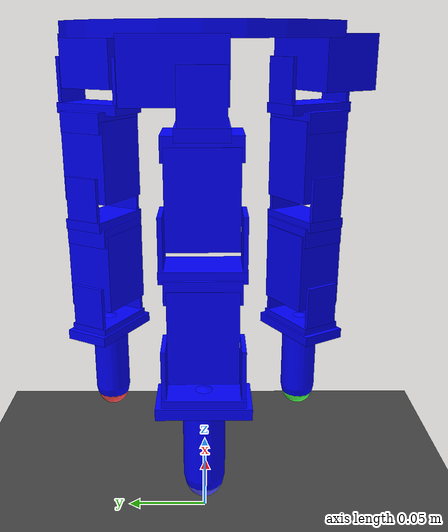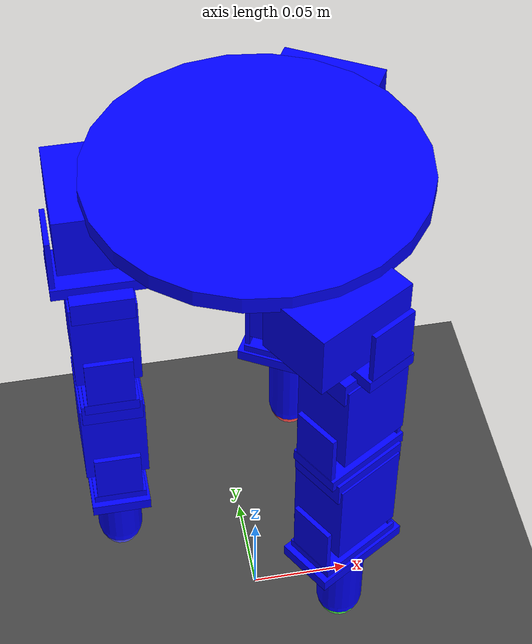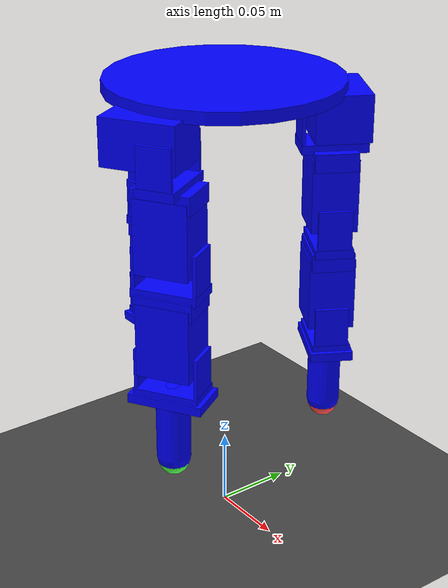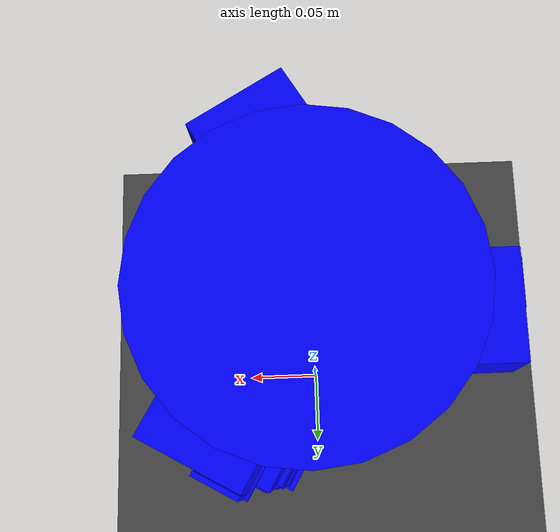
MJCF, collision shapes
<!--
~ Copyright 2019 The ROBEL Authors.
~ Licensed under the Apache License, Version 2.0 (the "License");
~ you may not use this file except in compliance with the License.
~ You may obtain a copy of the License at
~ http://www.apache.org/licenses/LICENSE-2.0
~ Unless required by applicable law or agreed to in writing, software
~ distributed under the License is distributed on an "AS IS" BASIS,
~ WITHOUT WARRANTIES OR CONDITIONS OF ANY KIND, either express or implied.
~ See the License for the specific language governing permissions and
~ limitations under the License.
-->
<mujoco model="dclaw scene">

    <include file="dclaw.xml"/>

    <visual>
        <headlight diffuse="0.6 0.6 0.6" ambient="0.3 0.3 0.3" specular="0 0 0"/>
        <rgba haze="0.15 0.25 0.35 1"/>
        <global azimuth="120" elevation="-20"/>
    </visual>

    <asset>
        <texture type="2d" name="groundplane" builtin="flat" rgb1="0.27 0.27 0.27"
                 width="300" height="300"/>
        <material name="groundplane" texture="groundplane" reflectance="0.0"/>
    </asset>

    <worldbody>
        <camera name="closeup" pos="2.  0.  0.5" quat="0.5 0.5 0.5 0.5"/>

        <light pos="0 0 1.5" dir="0 0 -1" directional="true"/>
        <geom name="floor" size="0 0 0.05" type="plane" material="groundplane"/>

<!--                  friction="0.5 0.005 0.0001"-->

<!--            &lt;!&ndash; add colors to the cube's surfaces &ndash;&gt;-->

<!--            &lt;!&ndash; add coordinate system &ndash;&gt;-->

    </worldbody>
</mujoco>

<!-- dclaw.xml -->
<mujoco model="dclaw">
    <compiler angle="radian" meshdir="assets"/>

    <option timestep="0.0025" iterations="50" tolerance="1e-10" solver="Newton" jacobian="dense" cone="elliptic"/>

    <asset>
        <mesh name="xh28" file="xh_base_high_poly.stl" scale=".001 .001 .001"/>
        <mesh name="plastic_finger" file="xh_finger_tip.stl" scale=".001 .001 .001"/>
        <mesh name="metal_clamping" file="xh_clamping_high_poly.stl" scale=".001 .001 .001"/>
        <mesh name="metal_clamping_small" file="xh_clamping_small_high_poly.stl" scale=".001 .001 .001"/>
        <mesh name="plastic_top" file="xh_white_top_high_poly.stl" scale=".001 .001 .001"/>
        <mesh name="xh28_hull" file="xh_base_hull.stl" scale=".001 .001 .001"/>
        <mesh name="xh28_hull_top" file="xh_base_hull_top.stl" scale=".001 .001 .001"/>
    </asset>
    <default>
        <default class="dclaw3xh">
            <joint limited="true" damping=".1" armature="0.001"/>
            <geom contype="0" conaffinity="0" condim="4" group="1" margin="0.0005" material="metal_black" type="mesh"/>
            <motor ctrlrange="-1.57 1.57" ctrllimited="true"/>
            <site group="1"/>
            <default class="overlay">
                <geom contype="0" conaffinity="0" group="3" type="mesh" material="greenish"/>
                <joint damping="100" frictionloss="100" armature="0"/>
                <site group="3"/>
            </default>
            <default class="phy_metal">
                <geom contype="1" conaffinity="1" group="4" type="mesh" rgba="0.0 0.0 1.0 .3"/>
                <site group="4"/>
            </default>
            <default class="phy_plastic">
                <geom contype="1" conaffinity="1" group="4" type="mesh" rgba="0.0 0.0 1.0 .3"
                      friction=".2 0.005 0.0001"/>
                <site group="4"/>
            </default>
        </default>
    </default>
    <asset>
        <material name="metal_black" specular="0" shininess="0" rgba="0.2 0.2 0.2 1.0"/>
        <material name="metal_grey" specular="0" shininess="0" rgba="0.5 0.5 0.5 1.0"/>
        <material name="plastic" specular="0." shininess="0" rgba="1 1 1 1"/>
        <material name="acrylic" specular="0." shininess="0" rgba="1 1 1 .2"/>
        <material name="greenish" specular="0.0" shininess="0" rgba="0.3 1 0.3 1"/>
    </asset>
    <actuator>
        <position name="FF10" kp="20" joint="FF10" class="dclaw3xh" ctrlrange="-1.35 1.35"/>
        <position name="FF11" kp="20" joint="FF11" class="dclaw3xh" ctrlrange="-1.35 1.35"/>
        <position name="FF12" kp="20" joint="FF12" class="dclaw3xh" ctrlrange="-1.35 1.35"/>
        <position name="MF20" kp="20" joint="MF20" class="dclaw3xh" ctrlrange="-1.35 1.35"/>
        <position name="MF21" kp="20" joint="MF21" class="dclaw3xh" ctrlrange="-1.35 1.35"/>
        <position name="MF22" kp="20" joint="MF22" class="dclaw3xh" ctrlrange="-1.35 1.35"/>
        <position name="TH30" kp="20" joint="TH30" class="dclaw3xh" ctrlrange="-1.35 1.35"/>
        <position name="TH31" kp="20" joint="TH31" class="dclaw3xh" ctrlrange="-1.35 1.35"/>
        <position name="TH32" kp="20" joint="TH32" class="dclaw3xh" ctrlrange="-1.35 1.35"/>
    </actuator>
    <sensor>
        <jointpos name="FF10_pos_sensor" joint="FF10"/>
        <jointpos name="FF11_pos_sensor" joint="FF11"/>
        <jointpos name="FF12_pos_sensor" joint="FF12"/>
        <jointpos name="MF20_pos_sensor" joint="MF20"/>
        <jointpos name="MF21_pos_sensor" joint="MF21"/>
        <jointpos name="MF22_pos_sensor" joint="MF22"/>
        <jointpos name="TH30_pos_sensor" joint="TH30"/>
        <jointpos name="TH31_pos_sensor" joint="TH31"/>
        <jointpos name="TH32_pos_sensor" joint="TH32"/>
        <jointvel name="FF10_velocity_sensor" joint="FF10"/>
        <jointvel name="FF11_velocity_sensor" joint="FF11"/>
        <jointvel name="FF12_velocity_sensor" joint="FF12"/>
        <jointvel name="MF20_velocity_sensor" joint="MF20"/>
        <jointvel name="MF21_velocity_sensor" joint="MF21"/>
        <jointvel name="MF22_velocity_sensor" joint="MF22"/>
        <jointvel name="TH30_velocity_sensor" joint="TH30"/>
        <jointvel name="TH31_velocity_sensor" joint="TH31"/>
        <jointvel name="TH32_velocity_sensor" joint="TH32"/>
    </sensor>

    <worldbody>
        <body name="dClaw" euler="3.14 0 0" childclass="dclaw3xh" pos="0 0 0.3">
            <geom class="phy_metal" type="cylinder" size="0.075 0.004" mass=".11"/>
            <site name="S_grasp" pos="0 0 0.24" type="sphere" size="0.01" group="4"/>
            <!-- INDEX/FIRST FINGER -->
            <body name="FFbase" pos=".03 -0.062 .003" euler="0 0 .52">
                <geom mesh="xh28" pos="0 0 0.01425" euler="1.57 0 1.57"/>
                <geom class="phy_metal" type="box" pos=".012 0 0.014" size="0.024 0.0175 0.015" mass=".093"/>
                <body name="FF10" pos="0 0 0.01425" euler="0 0 3.14">
                    <geom mesh="metal_clamping" euler="0 0 1.57"/>
                    <geom mesh="metal_clamping_small" pos="0 0 0.055" euler="3.14 0 0"/>
                    <geom mesh="xh28" pos="0 0 0.068" euler="1.57 1.57 0"/>
                    <geom class="phy_metal" type="box" pos="0 0 0.056" size="0.0175 0.015 0.024" mass=".093"/>
                    <geom class="phy_metal" type="box" pos="0.0 0 0.026" size="0.0125 0.0214 0.003" mass=".003"/>
                    <geom class="phy_metal" type="box" pos="0 0.02 0.013" size="0.011 0.0012 0.016" mass=".002"/>
                    <geom class="phy_metal" type="box" pos="0 -0.02 0.013" size="0.011 0.0012 0.016" mass=".002"/>
                    <geom class="phy_metal" type="box" pos="0 0 0.033" size="0.019 0.014 0.006" mass=".005"/>
                    <joint name="FF10" type="hinge" axis="0 1 0" range="-.45 1.35"/>
                    <body name="FF11" pos="0 0 0.0675">
                        <geom mesh="metal_clamping_small" pos="0 0 0.055" euler="3.14 0 0"/>
                        <geom mesh="xh28" pos="0 0 0.0686" euler="1.57 1.57 0"/>
                        <geom mesh="metal_clamping"/>
                        <geom class="phy_metal" type="box" pos="0 0 0.056" size="0.0175 0.015 0.024" mass=".093"/>
                        <geom class="phy_metal" type="box" pos="0 0 0.026" size="0.0214 0.0125 0.003" mass=".003"/>
                        <geom class="phy_metal" type="box" pos="0.02 0 0.013" size="0.0012 0.011 0.016" mass=".002"/>
                        <geom class="phy_metal" type="box" pos="-0.02 0 0.013" size="0.0012 0.011 0.016" mass=".002"/>
                        <geom class="phy_metal" type="box" pos="0 0 0.033" size="0.019 0.014 0.006" mass=".005"/>
                        <joint name="FF11" type="hinge" axis="1 0 0" range="-2 2"/>
                        <body name="FF12" pos="0 0 0.068">
                            <geom mesh="metal_clamping"/>
                            <geom material="plastic" mesh="plastic_finger" pos="0 0 0.046"/>
                            <geom class="phy_metal" type="box" pos="0.0 0 0.026" size="0.0214 0.0125 0.003"
                                  mass=".003"/>
                            <geom class="phy_metal" type="box" pos="0.02 0 0.013" size="0.0012 0.011 0.016"
                                  mass=".002"/>
                            <geom class="phy_metal" type="box" pos="-0.02 0 0.013" size="0.0012 0.011 0.016"
                                  mass=".002"/>
                            <geom class="phy_plastic" type="capsule" pos="0 0 0.053" size="0.011 0.02" mass=".018"/>
                            <geom class="phy_plastic" type="box" pos="0 0 0.03" size="0.0245 0.014 0.003" mass=".007"/>
                            <joint name="FF12" type="hinge" axis="1 0 0" range="-2 2"/>
                            <site name="FFtip" type="sphere" pos="0 0 .076" size="0.01" rgba="1 .3 .3 1"/>
                        </body>
                    </body>
                </body>
            </body>
            <!-- MIDDLE FINGER -->
            <body name="MFbase" pos=".03 0.062 .003" euler="0 0 2.6">
                <geom mesh="xh28" pos="0 0 0.01425" euler="1.57 0 1.57"/>
                <geom class="phy_metal" type="box" pos=".012 0 0.014" size="0.024 0.0175 0.015" mass=".093"/>
                <body name="MF20" pos="0 0 0.01425" euler="0 0 3.14">
                    <geom mesh="metal_clamping" euler="0 0 1.57"/>
                    <geom mesh="metal_clamping_small" pos="0 0 0.055" euler="3.14 0 0"/>
                    <geom mesh="xh28" pos="0 0 0.068" euler="1.57 1.57 0"/>
                    <geom class="phy_metal" type="box" pos="0 0 0.056" size="0.0175 0.015 0.024" mass=".093"/>
                    <geom class="phy_metal" type="box" pos="0.0 0 0.026" size="0.0125 0.0214 0.003" mass=".003"/>
                    <geom class="phy_metal" type="box" pos="0 0.02 0.013" size="0.011 0.0012 0.016" mass=".002"/>
                    <geom class="phy_metal" type="box" pos="0 -0.02 0.013" size="0.011 0.0012 0.016" mass=".002"/>
                    <geom class="phy_metal" type="box" pos="0 0 0.033" size="0.019 0.014 0.006" mass=".005"/>
                    <joint name="MF20" type="hinge" axis="0 1 0" range="-.45 1.35"/>
                    <body name="MF21" pos="0 0 0.0675">
                        <geom mesh="metal_clamping_small" pos="0 0 0.055" euler="3.14 0 0"/>
                        <geom mesh="xh28" pos="0 0 0.0686" euler="1.57 1.57 0"/>
                        <geom mesh="metal_clamping"/>
                        <geom class="phy_metal" type="box" pos="0 0 0.056" size="0.0175 0.015 0.024" mass=".093"/>
                        <geom class="phy_metal" type="box" pos="0 0 0.026" size="0.0214 0.0125 0.003" mass=".003"/>
                        <geom class="phy_metal" type="box" pos="0.02 0 0.013" size="0.0012 0.011 0.016" mass=".002"/>
                        <geom class="phy_metal" type="box" pos="-0.02 0 0.013" size="0.0012 0.011 0.016" mass=".002"/>
                        <geom class="phy_metal" type="box" pos="0 0 0.033" size="0.019 0.014 0.006" mass=".005"/>
                        <joint name="MF21" type="hinge" axis="1 0 0" range="-2 2"/>
                        <body name="MF22" pos="0 0 0.068">
                            <geom mesh="metal_clamping"/>
                            <geom material="plastic" mesh="plastic_finger" pos="0 0 0.046"/>
                            <geom class="phy_metal" type="box" pos="0.0 0 0.026" size="0.0214 0.0125 0.003"
                                  mass=".003"/>
                            <geom class="phy_metal" type="box" pos="0.02 0 0.013" size="0.0012 0.011 0.016"
                                  mass=".002"/>
                            <geom class="phy_metal" type="box" pos="-0.02 0 0.013" size="0.0012 0.011 0.016"
                                  mass=".002"/>
                            <geom class="phy_plastic" type="capsule" pos="0 0 0.053" size="0.011 0.02" mass=".018"/>
                            <geom class="phy_plastic" type="box" pos="0 0 0.03" size="0.0245 0.014 0.003" mass=".007"/>
                            <joint name="MF22" type="hinge" axis="1 0 0" range="-2 2"/>
                            <site name="MFtip" type="sphere" pos="0 0 .076" size="0.01" rgba=".3 1 .3 1"/>
                        </body>
                    </body>
                </body>
            </body>
            <!-- THUMB -->
            <body name="THbase" pos="-.07 0 .003" euler="0 0 -1.57">
                <geom mesh="xh28" pos="0 0 0.01425" euler="1.57 0 1.57"/>
                <geom class="phy_metal" type="box" pos=".012 0 0.014" size="0.024 0.0175 0.015" mass=".093"/>
                <body name="TH30" pos="0 0 0.01425" euler="0 0 3.14">
                    <geom mesh="metal_clamping" euler="0 0 1.57"/>
                    <geom mesh="metal_clamping_small" pos="0 0 0.055" euler="3.14 0 0"/>
                    <geom mesh="xh28" pos="0 0 0.068" euler="1.57 1.57 0"/>
                    <geom class="phy_metal" type="box" pos="0 0 0.056" size="0.0175 0.015 0.024" mass=".093"/>
                    <geom class="phy_metal" type="box" pos="0.0 0 0.026" size="0.0125 0.0214 0.003" mass=".003"/>
                    <geom class="phy_metal" type="box" pos="0 0.02 0.013" size="0.011 0.0012 0.016" mass=".002"/>
                    <geom class="phy_metal" type="box" pos="0 -0.02 0.013" size="0.011 0.0012 0.016" mass=".002"/>
                    <geom class="phy_metal" type="box" pos="0 0 0.033" size="0.019 0.014 0.006" mass=".005"/>
                    <joint name="TH30" type="hinge" axis="0 1 0" range="-.45 1.35"/>
                    <body name="TH31" pos="0 0 0.0675">
                        <geom mesh="metal_clamping_small" pos="0 0 0.055" euler="3.14 0 0"/>
                        <geom mesh="xh28" pos="0 0 0.0686" euler="1.57 1.57 0"/>
                        <geom mesh="metal_clamping"/>
                        <geom class="phy_metal" type="box" pos="0 0 0.056" size="0.0175 0.015 0.024" mass=".093"/>
                        <geom class="phy_metal" type="box" pos="0 0 0.026" size="0.0214 0.0125 0.003" mass=".003"/>
                        <geom class="phy_metal" type="box" pos="0.02 0 0.013" size="0.0012 0.011 0.016" mass=".002"/>
                        <geom class="phy_metal" type="box" pos="-0.02 0 0.013" size="0.0012 0.011 0.016" mass=".002"/>
                        <geom class="phy_metal" type="box" pos="0 0 0.033" size="0.019 0.014 0.006" mass=".005"/>
                        <joint name="TH31" type="hinge" axis="1 0 0" range="-2 2"/>
                        <body name="TH32" pos="0 0 0.068">
                            <geom mesh="metal_clamping"/>
                            <geom material="plastic" mesh="plastic_finger" pos="0 0 0.046"/>
                            <geom class="phy_metal" type="box" pos="0.0 0 0.026" size="0.0214 0.0125 0.003"
                                  mass=".003"/>
                            <geom class="phy_metal" type="box" pos="0.02 0 0.013" size="0.0012 0.011 0.016"
                                  mass=".002"/>
                            <geom class="phy_metal" type="box" pos="-0.02 0 0.013" size="0.0012 0.011 0.016"
                                  mass=".002"/>
                            <geom class="phy_plastic" type="capsule" pos="0 0 0.053" size="0.011 0.02" mass=".018"/>
                            <geom class="phy_plastic" type="box" pos="0 0 0.03" size="0.0245 0.014 0.003" mass=".007"/>
                            <joint name="TH32" type="hinge" axis="1 0 0" range="-2 2"/>
                            <site name="THtip" type="sphere" pos="0 0 .076" size="0.01" rgba=".3 .3 1 1"/>
                        </body>
                    </body>
                </body>
            </body>
        </body>
    </worldbody>
</mujoco>
